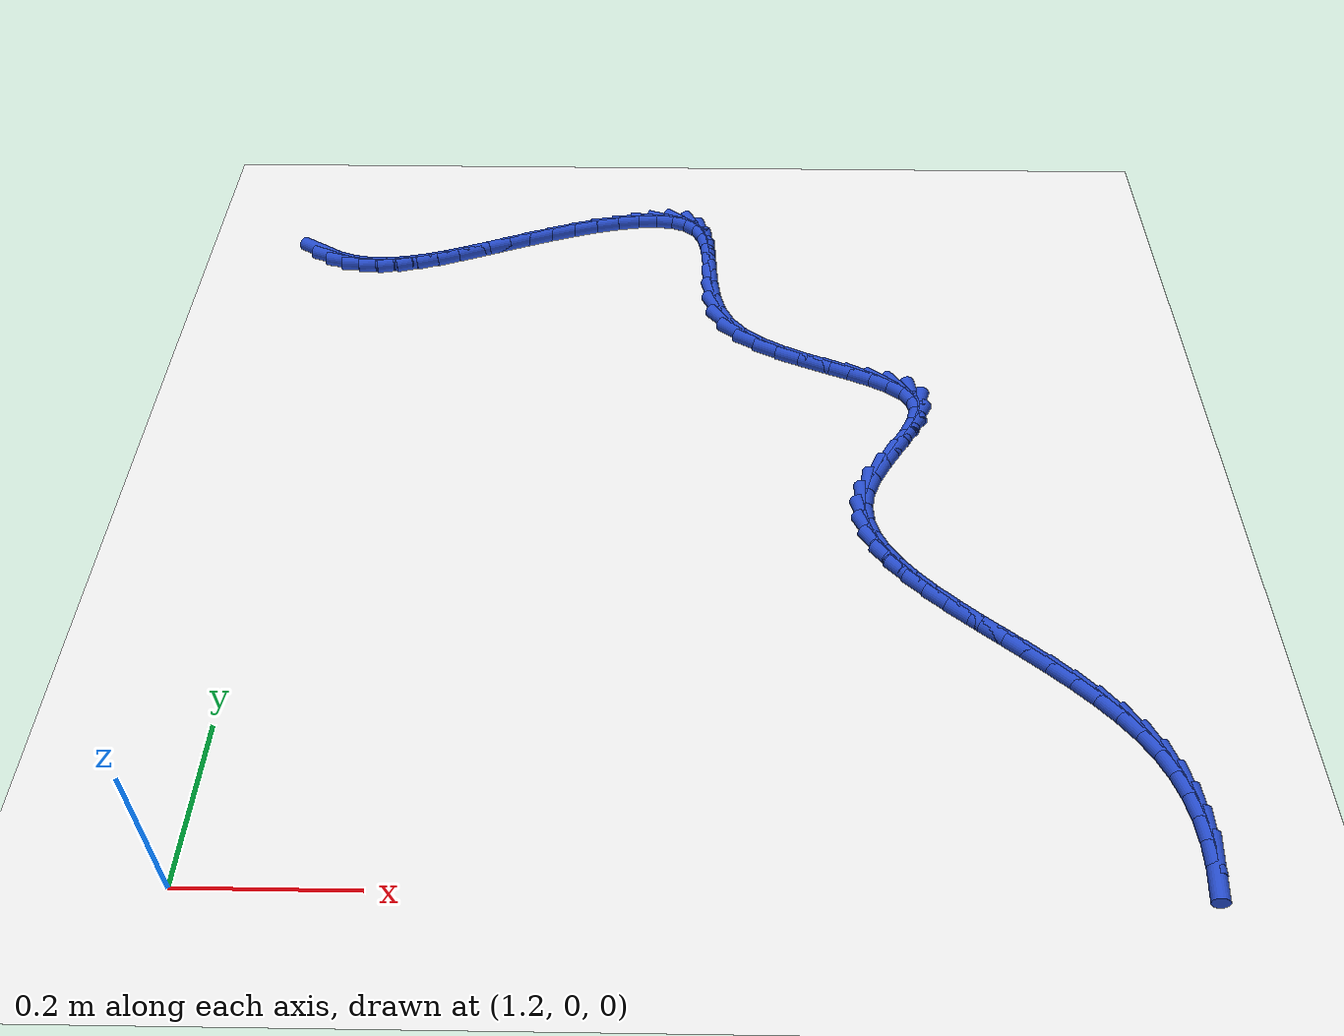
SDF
<sdf version="1.6">
 <world name="default">
  <model name="ground_plane">
   <static>1</static>
   <link name="link">
    <collision name="collision">
     <geometry><plane><normal>0 0 1</normal><size>100 100</size></plane></geometry>
     <surface><friction><ode><mu>100</mu><mu2>50</mu2></ode></friction></surface>
    </collision>
    <visual name="visual">
     <cast_shadows>0</cast_shadows>
     <geometry><plane><normal>0 0 1</normal><size>100 100</size></plane></geometry>
     <material>
      <script><uri>file://media/materials/scripts/gazebo.material</uri><name>Gazebo/WhiteGlow</name></script>
     </material>
    </visual>
   </link>
  </model>
  <model name="line">
   <link name="link_68">
    <pose>1.1751487633603401 1.0513366746614365 0.01 0 1.57 -0.548528466043791</pose>
    <collision name="collision">
     <geometry><cylinder><radius>0.01</radius><length>0.08</length></cylinder></geometry>
    </collision>
    <visual name="visual">
     <material>
      <script><name>Gazebo/Blue</name><uri>file://media/materials/scripts/gazebo.material</uri></script>
     </material>
     <geometry><cylinder><radius>0.01</radius><length>0.08</length></cylinder></geometry>
    </visual>
   </link>
   <link name="link_69">
    <pose>1.1981641821962783 1.0372723582895738 0.01 0 1.57 -0.36453807532582233</pose>
    <collision name="collision">
     <geometry><cylinder><radius>0.01</radius><length>0.08</length></cylinder></geometry>
    </collision>
    <visual name="visual">
     <material>
      <script><name>Gazebo/Blue</name><uri>file://media/materials/scripts/gazebo.material</uri></script>
     </material>
     <geometry><cylinder><radius>0.01</radius><length>0.08</length></cylinder></geometry>
    </visual>
   </link>
   <link name="link_70">
    <pose>1.2219784780293776 1.0281849949817896 0.01 0 1.57 -0.18440869892412518</pose>
    <collision name="collision">
     <geometry><cylinder><radius>0.01</radius><length>0.08</length></cylinder></geometry>
    </collision>
    <visual name="visual">
     <material>
      <script><name>Gazebo/Blue</name><uri>file://media/materials/scripts/gazebo.material</uri></script>
     </material>
     <geometry><cylinder><radius>0.01</radius><length>0.08</length></cylinder></geometry>
    </visual>
   </link>
   <link name="link_71">
    <pose>1.2466213018355772 1.0235884208245636 0.01 0 1.57 -0.02437688904333088</pose>
    <collision name="collision">
     <geometry><cylinder><radius>0.01</radius><length>0.08</length></cylinder></geometry>
    </collision>
    <visual name="visual">
     <material>
      <script><name>Gazebo/Blue</name><uri>file://media/materials/scripts/gazebo.material</uri></script>
     </material>
     <geometry><cylinder><radius>0.01</radius><length>0.08</length></cylinder></geometry>
    </visual>
   </link>
   <link name="link_72">
    <pose>1.2721214353138217 1.022966683743123 0.01 0 1.57 0.10711230518315785</pose>
    <collision name="collision">
     <geometry><cylinder><radius>0.01</radius><length>0.08</length></cylinder></geometry>
    </collision>
    <visual name="visual">
     <material>
      <script><name>Gazebo/Blue</name><uri>file://media/materials/scripts/gazebo.material</uri></script>
     </material>
     <geometry><cylinder><radius>0.01</radius><length>0.08</length></cylinder></geometry>
    </visual>
   </link>
   <link name="link_73">
    <pose>1.2985076601630554 1.0258038316626956 0.01 0 1.57 0.20863520247710268</pose>
    <collision name="collision">
     <geometry><cylinder><radius>0.01</radius><length>0.08</length></cylinder></geometry>
    </collision>
    <visual name="visual">
     <material>
      <script><name>Gazebo/Blue</name><uri>file://media/materials/scripts/gazebo.material</uri></script>
     </material>
     <geometry><cylinder><radius>0.01</radius><length>0.08</length></cylinder></geometry>
    </visual>
   </link>
   <link name="link_74">
    <pose>1.3258087580822235 1.0315839125085091 0.01 0 1.57 0.2827825981774086</pose>
    <collision name="collision">
     <geometry><cylinder><radius>0.01</radius><length>0.08</length></cylinder></geometry>
    </collision>
    <visual name="visual">
     <material>
      <script><name>Gazebo/Blue</name><uri>file://media/materials/scripts/gazebo.material</uri></script>
     </material>
     <geometry><cylinder><radius>0.01</radius><length>0.08</length></cylinder></geometry>
    </visual>
   </link>
   <link name="link_75">
    <pose>1.3540535107702707 1.039790974205791 0.01 0 1.57 0.33338024632950375</pose>
    <collision name="collision">
     <geometry><cylinder><radius>0.01</radius><length>0.08</length></cylinder></geometry>
    </collision>
    <visual name="visual">
     <material>
      <script><name>Gazebo/Blue</name><uri>file://media/materials/scripts/gazebo.material</uri></script>
     </material>
     <geometry><cylinder><radius>0.01</radius><length>0.08</length></cylinder></geometry>
    </visual>
   </link>
   <link name="link_76">
    <pose>1.3832706999261415 1.0499090646797686 0.01 0 1.57 0.3640192103134254</pose>
    <collision name="collision">
     <geometry><cylinder><radius>0.01</radius><length>0.08</length></cylinder></geometry>
    </collision>
    <visual name="visual">
     <material>
      <script><name>Gazebo/Blue</name><uri>file://media/materials/scripts/gazebo.material</uri></script>
     </material>
     <geometry><cylinder><radius>0.01</radius><length>0.08</length></cylinder></geometry>
    </visual>
   </link>
   <link name="link_77">
    <pose>1.4134891072487812 1.06142223185567 0.01 0 1.57 0.37754905623832963</pose>
    <collision name="collision">
     <geometry><cylinder><radius>0.01</radius><length>0.08</length></cylinder></geometry>
    </collision>
    <visual name="visual">
     <material>
      <script><name>Gazebo/Blue</name><uri>file://media/materials/scripts/gazebo.material</uri></script>
     </material>
     <geometry><cylinder><radius>0.01</radius><length>0.08</length></cylinder></geometry>
    </visual>
   </link>
   <link name="link_78">
    <pose>1.4447375144371337 1.073814523658723 0.01 0 1.57 0.3760312948506339</pose>
    <collision name="collision">
     <geometry><cylinder><radius>0.01</radius><length>0.08</length></cylinder></geometry>
    </collision>
    <visual name="visual">
     <material>
      <script><name>Gazebo/Blue</name><uri>file://media/materials/scripts/gazebo.material</uri></script>
     </material>
     <geometry><cylinder><radius>0.01</radius><length>0.08</length></cylinder></geometry>
    </visual>
   </link>
   <link name="link_79">
    <pose>1.4770447031901448 1.0865699880141548 0.01 0 1.57 0.36089655454381203</pose>
    <collision name="collision">
     <geometry><cylinder><radius>0.01</radius><length>0.08</length></cylinder></geometry>
    </collision>
    <visual name="visual">
     <material>
      <script><name>Gazebo/Blue</name><uri>file://media/materials/scripts/gazebo.material</uri></script>
     </material>
     <geometry><cylinder><radius>0.01</radius><length>0.08</length></cylinder></geometry>
    </visual>
   </link>
   <link name="link_80">
    <pose>1.5104307156463077 1.0991707630271332 0.01 0 1.57 0.3342164246351071</pose>
    <collision name="collision">
     <geometry><cylinder><radius>0.01</radius><length>0.08</length></cylinder></geometry>
    </collision>
    <visual name="visual">
     <material>
      <script><name>Gazebo/Blue</name><uri>file://media/materials/scripts/gazebo.material</uri></script>
     </material>
     <geometry><cylinder><radius>0.01</radius><length>0.08</length></cylinder></geometry>
    </visual>
   </link>
   <link name="link_81">
    <pose>1.5445550931049614 1.1110202080429676 0.01 0 1.57 0.29640694495373715</pose>
    <collision name="collision">
     <geometry><cylinder><radius>0.01</radius><length>0.08</length></cylinder></geometry>
    </collision>
    <visual name="visual">
     <material>
      <script><name>Gazebo/Blue</name><uri>file://media/materials/scripts/gazebo.material</uri></script>
     </material>
     <geometry><cylinder><radius>0.01</radius><length>0.08</length></cylinder></geometry>
    </visual>
   </link>
   <link name="link_82">
    <pose>1.5785967024421943 1.1214166426099732 0.01 0 1.57 0.24379468541604338</pose>
    <collision name="collision">
     <geometry><cylinder><radius>0.01</radius><length>0.08</length></cylinder></geometry>
    </collision>
    <visual name="visual">
     <material>
      <script><name>Gazebo/Blue</name><uri>file://media/materials/scripts/gazebo.material</uri></script>
     </material>
     <geometry><cylinder><radius>0.01</radius><length>0.08</length></cylinder></geometry>
    </visual>
   </link>
   <link name="link_83">
    <pose>1.6117010109179404 1.1296510875962578 0.01 0 1.57 0.1696424905337586</pose>
    <collision name="collision">
     <geometry><cylinder><radius>0.01</radius><length>0.08</length></cylinder></geometry>
    </collision>
    <visual name="visual">
     <material>
      <script><name>Gazebo/Blue</name><uri>file://media/materials/scripts/gazebo.material</uri></script>
     </material>
     <geometry><cylinder><radius>0.01</radius><length>0.08</length></cylinder></geometry>
    </visual>
   </link>
   <link name="link_84">
    <pose>1.6430134857921324 1.1350145638699265 0.01 0 1.57 0.0621372243248523</pose>
    <collision name="collision">
     <geometry><cylinder><radius>0.01</radius><length>0.08</length></cylinder></geometry>
    </collision>
    <visual name="visual">
     <material>
      <script><name>Gazebo/Blue</name><uri>file://media/materials/scripts/gazebo.material</uri></script>
     </material>
     <geometry><cylinder><radius>0.01</radius><length>0.08</length></cylinder></geometry>
    </visual>
   </link>
   <link name="link_85">
    <pose>1.6716795943247016 1.1367980922990857 0.01 0 1.57 -0.09923103418605521</pose>
    <collision name="collision">
     <geometry><cylinder><radius>0.01</radius><length>0.08</length></cylinder></geometry>
    </collision>
    <visual name="visual">
     <material>
      <script><name>Gazebo/Blue</name><uri>file://media/materials/scripts/gazebo.material</uri></script>
     </material>
     <geometry><cylinder><radius>0.01</radius><length>0.08</length></cylinder></geometry>
    </visual>
   </link>
   <link name="link_86">
    <pose>1.6968448037755817 1.1342926937518418 0.01 0 1.57 -0.3460568235937788</pose>
    <collision name="collision">
     <geometry><cylinder><radius>0.01</radius><length>0.08</length></cylinder></geometry>
    </collision>
    <visual name="visual">
     <material>
      <script><name>Gazebo/Blue</name><uri>file://media/materials/scripts/gazebo.material</uri></script>
     </material>
     <geometry><cylinder><radius>0.01</radius><length>0.08</length></cylinder></geometry>
    </visual>
   </link>
   <link name="link_87">
    <pose>1.7176545814047062 1.1267893890963014 0.01 0 1.57 -0.7026415769738923</pose>
    <collision name="collision">
     <geometry><cylinder><radius>0.01</radius><length>0.08</length></cylinder></geometry>
    </collision>
    <visual name="visual">
     <material>
      <script><name>Gazebo/Blue</name><uri>file://media/materials/scripts/gazebo.material</uri></script>
     </material>
     <geometry><cylinder><radius>0.01</radius><length>0.08</length></cylinder></geometry>
    </visual>
   </link>
   <link name="link_88">
    <pose>1.7332544233568012 1.1135792229174362 0.01 0 1.57 -1.0917864903423224</pose>
    <collision name="collision">
     <geometry><cylinder><radius>0.01</radius><length>0.08</length></cylinder></geometry>
    </collision>
    <visual name="visual">
     <material>
      <script><name>Gazebo/Blue</name><uri>file://media/materials/scripts/gazebo.material</uri></script>
     </material>
     <geometry><cylinder><radius>0.01</radius><length>0.08</length></cylinder></geometry>
    </visual>
   </link>
   <link name="link_89">
    <pose>1.7432507027102917 1.094331658848473 0.01 0 1.57 -1.3430122461683796</pose>
    <collision name="collision">
     <geometry><cylinder><radius>0.01</radius><length>0.08</length></cylinder></geometry>
    </collision>
    <visual name="visual">
     <material>
      <script><name>Gazebo/Blue</name><uri>file://media/materials/scripts/gazebo.material</uri></script>
     </material>
     <geometry><cylinder><radius>0.01</radius><length>0.08</length></cylinder></geometry>
    </visual>
   </link>
   <link name="link_90">
    <pose>1.7488785516576342 1.0700535098857828 0.01 0 1.57 -1.4692361141527863</pose>
    <collision name="collision">
     <geometry><cylinder><radius>0.01</radius><length>0.08</length></cylinder></geometry>
    </collision>
    <visual name="visual">
     <material>
      <script><name>Gazebo/Blue</name><uri>file://media/materials/scripts/gazebo.material</uri></script>
     </material>
     <geometry><cylinder><radius>0.01</radius><length>0.08</length></cylinder></geometry>
    </visual>
   </link>
   <link name="link_91">
    <pose>1.751732731340771 1.0420468748923941 0.01 0 1.57 -1.5158040078895092</pose>
    <collision name="collision">
     <geometry><cylinder><radius>0.01</radius><length>0.08</length></cylinder></geometry>
    </collision>
    <visual name="visual">
     <material>
      <script><name>Gazebo/Blue</name><uri>file://media/materials/scripts/gazebo.material</uri></script>
     </material>
     <geometry><cylinder><radius>0.01</radius><length>0.08</length></cylinder></geometry>
    </visual>
   </link>
   <link name="link_92">
    <pose>1.7534080029016428 1.0116138527313332 0.01 0 1.57 -1.5046287128860094</pose>
    <collision name="collision">
     <geometry><cylinder><radius>0.01</radius><length>0.08</length></cylinder></geometry>
    </collision>
    <visual name="visual">
     <material>
      <script><name>Gazebo/Blue</name><uri>file://media/materials/scripts/gazebo.material</uri></script>
     </material>
     <geometry><cylinder><radius>0.01</radius><length>0.08</length></cylinder></geometry>
    </visual>
   </link>
   <link name="link_93">
    <pose>1.7554991274821914 0.980056542265628 0.01 0 1.57 -1.4408192908810187</pose>
    <collision name="collision">
     <geometry><cylinder><radius>0.01</radius><length>0.08</length></cylinder></geometry>
    </collision>
    <visual name="visual">
     <material>
      <script><name>Gazebo/Blue</name><uri>file://media/materials/scripts/gazebo.material</uri></script>
     </material>
     <geometry><cylinder><radius>0.01</radius><length>0.08</length></cylinder></geometry>
    </visual>
   </link>
   <link name="link_94">
    <pose>1.7596008662243587 0.9486770423583066 0.01 0 1.57 -1.3185214401000014</pose>
    <collision name="collision">
     <geometry><cylinder><radius>0.01</radius><length>0.08</length></cylinder></geometry>
    </collision>
    <visual name="visual">
     <material>
      <script><name>Gazebo/Blue</name><uri>file://media/materials/scripts/gazebo.material</uri></script>
     </material>
     <geometry><cylinder><radius>0.01</radius><length>0.08</length></cylinder></geometry>
    </visual>
   </link>
   <link name="link_95">
    <pose>1.7673079802700853 0.9187774518723961 0.01 0 1.57 -1.1265540020992637</pose>
    <collision name="collision">
     <geometry><cylinder><radius>0.01</radius><length>0.08</length></cylinder></geometry>
    </collision>
    <visual name="visual">
     <material>
      <script><name>Gazebo/Blue</name><uri>file://media/materials/scripts/gazebo.material</uri></script>
     </material>
     <geometry><cylinder><radius>0.01</radius><length>0.08</length></cylinder></geometry>
    </visual>
   </link>
   <link name="link_96">
    <pose>1.7802152307613135 0.891659869670924 0.01 0 1.57 -0.880917438780095</pose>
    <collision name="collision">
     <geometry><cylinder><radius>0.01</radius><length>0.08</length></cylinder></geometry>
    </collision>
    <visual name="visual">
     <material>
      <script><name>Gazebo/Blue</name><uri>file://media/materials/scripts/gazebo.material</uri></script>
     </material>
     <geometry><cylinder><radius>0.01</radius><length>0.08</length></cylinder></geometry>
    </visual>
   </link>
   <link name="link_97">
    <pose>1.7994592034599086 0.8683375882702103 0.01 0 1.57 -0.6782252136252166</pose>
    <collision name="collision">
     <geometry><cylinder><radius>0.01</radius><length>0.08</length></cylinder></geometry>
    </collision>
    <visual name="visual">
     <material>
      <script><name>Gazebo/Blue</name><uri>file://media/materials/scripts/gazebo.material</uri></script>
     </material>
     <geometry><cylinder><radius>0.01</radius><length>0.08</length></cylinder></geometry>
    </visual>
   </link>
   <link name="link_98">
    <pose>1.8240782360928025 0.848501290164714 0.01 0 1.57 -0.539869519421529</pose>
    <collision name="collision">
     <geometry><cylinder><radius>0.01</radius><length>0.08</length></cylinder></geometry>
    </collision>
    <visual name="visual">
     <material>
      <script><name>Gazebo/Blue</name><uri>file://media/materials/scripts/gazebo.material</uri></script>
     </material>
     <geometry><cylinder><radius>0.01</radius><length>0.08</length></cylinder></geometry>
    </visual>
   </link>
   <link name="link_99">
    <pose>1.8525103719357185 0.8314632681428099 0.01 0 1.57 -0.4527917715765439</pose>
    <collision name="collision">
     <geometry><cylinder><radius>0.01</radius><length>0.08</length></cylinder></geometry>
    </collision>
    <visual name="visual">
     <material>
      <script><name>Gazebo/Blue</name><uri>file://media/materials/scripts/gazebo.material</uri></script>
     </material>
     <geometry><cylinder><radius>0.01</radius><length>0.08</length></cylinder></geometry>
    </visual>
   </link>
   <link name="link_100">
    <pose>1.8831936061579881 0.8165357846694805 0.01 0 1.57 -0.40649025239723474</pose>
    <collision name="collision">
     <geometry><cylinder><radius>0.01</radius><length>0.08</length></cylinder></geometry>
    </collision>
    <visual name="visual">
     <material>
      <script><name>Gazebo/Blue</name><uri>file://media/materials/scripts/gazebo.material</uri></script>
     </material>
     <geometry><cylinder><radius>0.01</radius><length>0.08</length></cylinder></geometry>
    </visual>
   </link>
   <link name="link_101">
    <pose>1.9145659339289427 0.8030311022097084 0.01 0 1.57 -0.3965088349581922</pose>
    <collision name="collision">
     <geometry><cylinder><radius>0.01</radius><length>0.08</length></cylinder></geometry>
    </collision>
    <visual name="visual">
     <material>
      <script><name>Gazebo/Blue</name><uri>file://media/materials/scripts/gazebo.material</uri></script>
     </material>
     <geometry><cylinder><radius>0.01</radius><length>0.08</length></cylinder></geometry>
    </visual>
   </link>
   <link name="link_102">
    <pose>1.9450653504179127 0.7902614832284766 0.01 0 1.57 -0.42561417835617943</pose>
    <collision name="collision">
     <geometry><cylinder><radius>0.01</radius><length>0.08</length></cylinder></geometry>
    </collision>
    <visual name="visual">
     <material>
      <script><name>Gazebo/Blue</name><uri>file://media/materials/scripts/gazebo.material</uri></script>
     </material>
     <geometry><cylinder><radius>0.01</radius><length>0.08</length></cylinder></geometry>
    </visual>
   </link>
   <link name="link_103">
    <pose>1.9731298507942312 0.7775391901907673 0.01 0 1.57 -0.5068389777201642</pose>
    <collision name="collision">
     <geometry><cylinder><radius>0.01</radius><length>0.08</length></cylinder></geometry>
    </collision>
    <visual name="visual">
     <material>
      <script><name>Gazebo/Blue</name><uri>file://media/materials/scripts/gazebo.material</uri></script>
     </material>
     <geometry><cylinder><radius>0.01</radius><length>0.08</length></cylinder></geometry>
    </visual>
   </link>
   <link name="link_104">
    <pose>1.9971974302272282 0.7641764855615631 0.01 0 1.57 -0.6709054010642173</pose>
    <collision name="collision">
     <geometry><cylinder><radius>0.01</radius><length>0.08</length></cylinder></geometry>
    </collision>
    <visual name="visual">
     <material>
      <script><name>Gazebo/Blue</name><uri>file://media/materials/scripts/gazebo.material</uri></script>
     </material>
     <geometry><cylinder><radius>0.01</radius><length>0.08</length></cylinder></geometry>
    </visual>
   </link>
   <link name="link_105">
    <pose>2.015706083886235 0.7494856318058469 0.01 0 1.57 -0.9725096840700541</pose>
    <collision name="collision">
     <geometry><cylinder><radius>0.01</radius><length>0.08</length></cylinder></geometry>
    </collision>
    <visual name="visual">
     <material>
      <script><name>Gazebo/Blue</name><uri>file://media/materials/scripts/gazebo.material</uri></script>
     </material>
     <geometry><cylinder><radius>0.01</radius><length>0.08</length></cylinder></geometry>
    </visual>
   </link>
   <link name="link_106">
    <pose>2.027093806940583 0.7327788913886012 0.01 0 1.57 -1.4316246484469655</pose>
    <collision name="collision">
     <geometry><cylinder><radius>0.01</radius><length>0.08</length></cylinder></geometry>
    </collision>
    <visual name="visual">
     <material>
      <script><name>Gazebo/Blue</name><uri>file://media/materials/scripts/gazebo.material</uri></script>
     </material>
     <geometry><cylinder><radius>0.01</radius><length>0.08</length></cylinder></geometry>
    </visual>
   </link>
   <link name="link_107">
    <pose>2.0298121314217084 0.7133729919865311 0.01 0 1.57 1.3041265093476424</pose>
    <collision name="collision">
     <geometry><cylinder><radius>0.01</radius><length>0.08</length></cylinder></geometry>
    </collision>
    <visual name="visual">
     <material>
      <script><name>Gazebo/Blue</name><uri>file://media/materials/scripts/gazebo.material</uri></script>
     </material>
     <geometry><cylinder><radius>0.01</radius><length>0.08</length></cylinder></geometry>
    </visual>
   </link>
   <link name="link_108">
    <pose>2.0237131009267055 0.6910466280609793 0.01 0 1.57 1.1020126737360667</pose>
    <collision name="collision">
     <geometry><cylinder><radius>0.01</radius><length>0.08</length></cylinder></geometry>
    </collision>
    <visual name="visual">
     <material>
      <script><name>Gazebo/Blue</name><uri>file://media/materials/scripts/gazebo.material</uri></script>
     </material>
     <geometry><cylinder><radius>0.01</radius><length>0.08</length></cylinder></geometry>
    </visual>
   </link>
   <link name="link_109">
    <pose>2.0112495734282936 0.6664363876344738 0.01 0 1.57 1.019383405083772</pose>
    <collision name="collision">
     <geometry><cylinder><radius>0.01</radius><length>0.08</length></cylinder></geometry>
    </collision>
    <visual name="visual">
     <material>
      <script><name>Gazebo/Blue</name><uri>file://media/materials/scripts/gazebo.material</uri></script>
     </material>
     <geometry><cylinder><radius>0.01</radius><length>0.08</length></cylinder></geometry>
    </visual>
   </link>
   <link name="link_110">
    <pose>1.9951572353946774 0.640272151333379 0.01 0 1.57 1.0090659305383614</pose>
    <collision name="collision">
     <geometry><cylinder><radius>0.01</radius><length>0.08</length></cylinder></geometry>
    </collision>
    <visual name="visual">
     <material>
      <script><name>Gazebo/Blue</name><uri>file://media/materials/scripts/gazebo.material</uri></script>
     </material>
     <geometry><cylinder><radius>0.01</radius><length>0.08</length></cylinder></geometry>
    </visual>
   </link>
   <link name="link_111">
    <pose>1.9781717732940618 0.6132837997840601 0.01 0 1.57 1.0609645526706872</pose>
    <collision name="collision">
     <geometry><cylinder><radius>0.01</radius><length>0.08</length></cylinder></geometry>
    </collision>
    <visual name="visual">
     <material>
      <script><name>Gazebo/Blue</name><uri>file://media/materials/scripts/gazebo.material</uri></script>
     </material>
     <geometry><cylinder><radius>0.01</radius><length>0.08</length></cylinder></geometry>
    </visual>
   </link>
   <link name="link_112">
    <pose>1.9630288735946522 0.586201213612882 0.01 0 1.57 1.1902030112183914</pose>
    <collision name="collision">
     <geometry><cylinder><radius>0.01</radius><length>0.08</length></cylinder></geometry>
    </collision>
    <visual name="visual">
     <material>
      <script><name>Gazebo/Blue</name><uri>file://media/materials/scripts/gazebo.material</uri></script>
     </material>
     <geometry><cylinder><radius>0.01</radius><length>0.08</length></cylinder></geometry>
    </visual>
   </link>
   <link name="link_113">
    <pose>1.9524454992345925 0.5597494470049688 0.01 0 1.57 1.3949034892397663</pose>
    <collision name="collision">
     <geometry><cylinder><radius>0.01</radius><length>0.08</length></cylinder></geometry>
    </collision>
    <visual name="visual">
     <material>
      <script><name>Gazebo/Blue</name><uri>file://media/materials/scripts/gazebo.material</uri></script>
     </material>
     <geometry><cylinder><radius>0.01</radius><length>0.08</length></cylinder></geometry>
    </visual>
   </link>
   <link name="link_114">
    <pose>1.9479298396243507 0.534341963628805 0.01 0 1.57 -1.5243660662556084</pose>
    <collision name="collision">
     <geometry><cylinder><radius>0.01</radius><length>0.08</length></cylinder></geometry>
    </collision>
    <visual name="visual">
     <material>
      <script><name>Gazebo/Blue</name><uri>file://media/materials/scripts/gazebo.material</uri></script>
     </material>
     <geometry><cylinder><radius>0.01</radius><length>0.08</length></cylinder></geometry>
    </visual>
   </link>
   <link name="link_115">
    <pose>1.9490656807091409 0.5098961657681509 0.01 0 1.57 -1.3140234296573599</pose>
    <collision name="collision">
     <geometry><cylinder><radius>0.01</radius><length>0.08</length></cylinder></geometry>
    </collision>
    <visual name="visual">
     <material>
      <script><name>Gazebo/Blue</name><uri>file://media/materials/scripts/gazebo.material</uri></script>
     </material>
     <geometry><cylinder><radius>0.01</radius><length>0.08</length></cylinder></geometry>
    </visual>
   </link>
   <link name="link_116">
    <pose>1.955265184696288 0.48628521555099535 0.01 0 1.57 -1.1346249635031962</pose>
    <collision name="collision">
     <geometry><cylinder><radius>0.01</radius><length>0.08</length></cylinder></geometry>
    </collision>
    <visual name="visual">
     <material>
      <script><name>Gazebo/Blue</name><uri>file://media/materials/scripts/gazebo.material</uri></script>
     </material>
     <geometry><cylinder><radius>0.01</radius><length>0.08</length></cylinder></geometry>
    </visual>
   </link>
   <link name="link_117">
    <pose>1.9659405137931178 0.4633822751053271 0.01 0 1.57 -0.9927171004303735</pose>
    <collision name="collision">
     <geometry><cylinder><radius>0.01</radius><length>0.08</length></cylinder></geometry>
    </collision>
    <visual name="visual">
     <material>
      <script><name>Gazebo/Blue</name><uri>file://media/materials/scripts/gazebo.material</uri></script>
     </material>
     <geometry><cylinder><radius>0.01</radius><length>0.08</length></cylinder></geometry>
    </visual>
   </link>
   <link name="link_118">
    <pose>1.9805038302069549 0.4410605065591349 0.01 0 1.57 -0.8858362534807391</pose>
    <collision name="collision">
     <geometry><cylinder><radius>0.01</radius><length>0.08</length></cylinder></geometry>
    </collision>
    <visual name="visual">
     <material>
      <script><name>Gazebo/Blue</name><uri>file://media/materials/scripts/gazebo.material</uri></script>
     </material>
     <geometry><cylinder><radius>0.01</radius><length>0.08</length></cylinder></geometry>
    </visual>
   </link>
   <link name="link_119">
    <pose>1.998367296145124 0.4191930720404074 0.01 0 1.57 -0.8082872983748486</pose>
    <collision name="collision">
     <geometry><cylinder><radius>0.01</radius><length>0.08</length></cylinder></geometry>
    </collision>
    <visual name="visual">
     <material>
      <script><name>Gazebo/Blue</name><uri>file://media/materials/scripts/gazebo.material</uri></script>
     </material>
     <geometry><cylinder><radius>0.01</radius><length>0.08</length></cylinder></geometry>
    </visual>
   </link>
   <link name="link_120">
    <pose>2.0189430738149516 0.3976531336771338 0.01 0 1.57 -0.754504589533358</pose>
    <collision name="collision">
     <geometry><cylinder><radius>0.01</radius><length>0.08</length></cylinder></geometry>
    </collision>
    <visual name="visual">
     <material>
      <script><name>Gazebo/Blue</name><uri>file://media/materials/scripts/gazebo.material</uri></script>
     </material>
     <geometry><cylinder><radius>0.01</radius><length>0.08</length></cylinder></geometry>
    </visual>
   </link>
   <link name="link_121">
    <pose>2.041643325423762 0.37631385359730235 0.01 0 1.57 -0.7201880106122049</pose>
    <collision name="collision">
     <geometry><cylinder><radius>0.01</radius><length>0.08</length></cylinder></geometry>
    </collision>
    <visual name="visual">
     <material>
      <script><name>Gazebo/Blue</name><uri>file://media/materials/scripts/gazebo.material</uri></script>
     </material>
     <geometry><cylinder><radius>0.01</radius><length>0.08</length></cylinder></geometry>
    </visual>
   </link>
   <link name="link_122">
    <pose>2.0658802131788803 0.3550483939289022 0.01 0 1.57 -0.702430721321956</pose>
    <collision name="collision">
     <geometry><cylinder><radius>0.01</radius><length>0.08</length></cylinder></geometry>
    </collision>
    <visual name="visual">
     <material>
      <script><name>Gazebo/Blue</name><uri>file://media/materials/scripts/gazebo.material</uri></script>
     </material>
     <geometry><cylinder><radius>0.01</radius><length>0.08</length></cylinder></geometry>
    </visual>
   </link>
   <link name="link_123">
    <pose>2.0910658992876314 0.3337299167999225 0.01 0 1.57 -0.6995576352406854</pose>
    <collision name="collision">
     <geometry><cylinder><radius>0.01</radius><length>0.08</length></cylinder></geometry>
    </collision>
    <visual name="visual">
     <material>
      <script><name>Gazebo/Blue</name><uri>file://media/materials/scripts/gazebo.material</uri></script>
     </material>
     <geometry><cylinder><radius>0.01</radius><length>0.08</length></cylinder></geometry>
    </visual>
   </link>
   <link name="link_124">
    <pose>2.1166125459573415 0.3122315843383512 0.01 0 1.57 -0.7109522536863679</pose>
    <collision name="collision">
     <geometry><cylinder><radius>0.01</radius><length>0.08</length></cylinder></geometry>
    </collision>
    <visual name="visual">
     <material>
      <script><name>Gazebo/Blue</name><uri>file://media/materials/scripts/gazebo.material</uri></script>
     </material>
     <geometry><cylinder><radius>0.01</radius><length>0.08</length></cylinder></geometry>
    </visual>
   </link>
   <link name="link_125">
    <pose>2.141932315395336 0.2904265586721776 0.01 0 1.57 -0.7369482494364707</pose>
    <collision name="collision">
     <geometry><cylinder><radius>0.01</radius><length>0.08</length></cylinder></geometry>
    </collision>
    <visual name="visual">
     <material>
      <script><name>Gazebo/Blue</name><uri>file://media/materials/scripts/gazebo.material</uri></script>
     </material>
     <geometry><cylinder><radius>0.01</radius><length>0.08</length></cylinder></geometry>
    </visual>
   </link>
   <link name="link_126">
    <pose>2.1664373698089383 0.26818800192939024 0.01 0 1.57 -0.7787846113358896</pose>
    <collision name="collision">
     <geometry><cylinder><radius>0.01</radius><length>0.08</length></cylinder></geometry>
    </collision>
    <visual name="visual">
     <material>
      <script><name>Gazebo/Blue</name><uri>file://media/materials/scripts/gazebo.material</uri></script>
     </material>
     <geometry><cylinder><radius>0.01</radius><length>0.08</length></cylinder></geometry>
    </visual>
   </link>
   <link name="link_127">
    <pose>2.189539871405475 0.24538907623797804 0.01 0 1.57 -0.8385792491485187</pose>
    <collision name="collision">
     <geometry><cylinder><radius>0.01</radius><length>0.08</length></cylinder></geometry>
    </collision>
    <visual name="visual">
     <material>
      <script><name>Gazebo/Blue</name><uri>file://media/materials/scripts/gazebo.material</uri></script>
     </material>
     <geometry><cylinder><radius>0.01</radius><length>0.08</length></cylinder></geometry>
    </visual>
   </link>
   <link name="link_128">
    <pose>2.2106519823922715 0.2219029437259299 0.01 0 1.57 -0.9192130662567227</pose>
    <collision name="collision">
     <geometry><cylinder><radius>0.01</radius><length>0.08</length></cylinder></geometry>
    </collision>
    <visual name="visual">
     <material>
      <script><name>Gazebo/Blue</name><uri>file://media/materials/scripts/gazebo.material</uri></script>
     </material>
     <geometry><cylinder><radius>0.01</radius><length>0.08</length></cylinder></geometry>
    </visual>
   </link>
   <link name="link_129">
    <pose>2.229185864976651 0.19760276652123437 0.01 0 1.57 -1.0239004042430275</pose>
    <collision name="collision">
     <geometry><cylinder><radius>0.01</radius><length>0.08</length></cylinder></geometry>
    </collision>
    <visual name="visual">
     <material>
      <script><name>Gazebo/Blue</name><uri>file://media/materials/scripts/gazebo.material</uri></script>
     </material>
     <geometry><cylinder><radius>0.01</radius><length>0.08</length></cylinder></geometry>
    </visual>
   </link>
   <link name="link_130">
    <pose>2.2445536908544352 0.1723617100235872 0.01 0 1.57 -1.149307496227249</pose>
    <collision name="collision">
     <geometry><cylinder><radius>0.01</radius><length>0.08</length></cylinder></geometry>
    </collision>
    <visual name="visual">
     <material>
      <script><name>Gazebo/Blue</name><uri>file://media/materials/scripts/gazebo.material</uri></script>
     </material>
     <geometry><cylinder><radius>0.01</radius><length>0.08</length></cylinder></geometry>
    </visual>
   </link>
   <link name="link_131">
    <pose>2.256325128749475 0.1461072458316275 0.01 0 1.57 -1.274015184425191</pose>
    <collision name="collision">
     <geometry><cylinder><radius>0.01</radius><length>0.08</length></cylinder></geometry>
    </collision>
    <visual name="visual">
     <material>
      <script><name>Gazebo/Blue</name><uri>file://media/materials/scripts/gazebo.material</uri></script>
     </material>
     <geometry><cylinder><radius>0.01</radius><length>0.08</length></cylinder></geometry>
    </visual>
   </link>
   <link name="link_132">
    <pose>2.264627384818069 0.11895908878251009 0.01 0 1.57 -1.390436924355381</pose>
    <collision name="collision">
     <geometry><cylinder><radius>0.01</radius><length>0.08</length></cylinder></geometry>
    </collision>
    <visual name="visual">
     <material>
      <script><name>Gazebo/Blue</name><uri>file://media/materials/scripts/gazebo.material</uri></script>
     </material>
     <geometry><cylinder><radius>0.01</radius><length>0.08</length></cylinder></geometry>
    </visual>
   </link>
   <link name="link_133">
    <pose>2.269710977865841 0.09107947287295856 0.01 0 1.57 -1.4965731730741347</pose>
    <collision name="collision">
     <geometry><cylinder><radius>0.01</radius><length>0.08</length></cylinder></geometry>
    </collision>
    <visual name="visual">
     <material>
      <script><name>Gazebo/Blue</name><uri>file://media/materials/scripts/gazebo.material</uri></script>
     </material>
     <geometry><cylinder><radius>0.01</radius><length>0.08</length></cylinder></geometry>
    </visual>
   </link>
   <link name="link_134">
    <pose>2.2718264266984147 0.06263063209969655 0.01 0 1.57 1.549930901985372</pose>
    <collision name="collision">
     <geometry><cylinder><radius>0.01</radius><length>0.08</length></cylinder></geometry>
    </collision>
    <visual name="visual">
     <material>
      <script><name>Gazebo/Blue</name><uri>file://media/materials/scripts/gazebo.material</uri></script>
     </material>
     <geometry><cylinder><radius>0.01</radius><length>0.08</length></cylinder></geometry>
    </visual>
   </link>
   <link name="link_135">
    <pose>2.2712242501214126 0.0337748004594468 0.01 0 1.57 1.46571331800403</pose>
    <collision name="collision">
     <geometry><cylinder><radius>0.01</radius><length>0.08</length></cylinder></geometry>
    </collision>
    <visual name="visual">
     <material>
      <script><name>Gazebo/Blue</name><uri>file://media/materials/scripts/gazebo.material</uri></script>
     </material>
     <geometry><cylinder><radius>0.01</radius><length>0.08</length></cylinder></geometry>
    </visual>
   </link>
  </model>
 </world>
</sdf>
